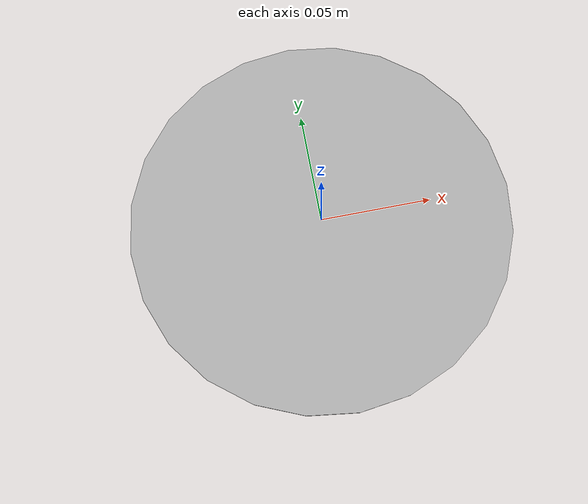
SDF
<?xml version='1.0'?>
<sdf version='1.6'>
		<model name="RangeAndBearing">
			<self_collide>true</self_collide>
			<pose>0.0 0.0 0.0 0.0 0.0 0.0</pose>
			<!-- Start of parts of the pmodel RangeAndBearing -->
			<!-- End of parts of the pmodel RangeAndBearing -->

			<!-- Start of links of the pmodel RangeAndBearing -->
			<!-- link full name is RangeAndBearing::Core -->
			<link name="1-Core">
					<pose>0.0 0.0 0.0 0.0 0.0 0.0</pose>
					<inertial>
						<pose>0.0 0.0 0.0 0.0 0.0 0.0</pose>
						<inertia>
							<ixx>1.0</ixx>
							<ixy>0.0</ixy>
							<ixz>0.0</ixz>
							<iyy>1.0</iyy>
							<iyz>0.0</iyz>
							<izz>1.0</izz>
						</inertia>
						<mass>0.009999999776482582</mass>
					</inertial>
					<!-- body full name is RangeAndBearing::Core::Frame -->
					<collision name="1--Frame">
						<laser_retro>0.0</laser_retro>
						<pose>0.0 0.0 0.0 0.0 0.0 0.0</pose>
						<geometry>
							<cylinder>
								<radius>0.08500000089406967</radius>
								<length>0.004999999888241291</length>
							</cylinder>
						</geometry>
						<surface>
							<bounce>
								<restitution_coefficient>0.0</restitution_coefficient>
								<threshold>100000.0</threshold>
							</bounce>
							<friction>
								<ode>
									<mu>1.0</mu>
									<mu2>1.0</mu2>
									<fdir1>0.0 0.0 0.0</fdir1>
									<slip1>0.0</slip1>
									<slip2>0.0</slip2>
								</ode>
								<torsional>
									<coefficient>1.0</coefficient>
									<surface_radius>0.0</surface_radius>
								</torsional>
							</friction>
						</surface>
					</collision>
					<visual name="1--Frame">
						<laser_retro>0.0</laser_retro>
						<pose>0.0 0.0 0.0 0.0 0.0 0.0</pose>
						<geometry>
							<cylinder>
								<radius>0.08500000089406967</radius>
								<length>0.004999999888241291</length>
							</cylinder>
						</geometry>
						<surface>
							<bounce>
								<restitution_coefficient>0.0</restitution_coefficient>
								<threshold>100000.0</threshold>
							</bounce>
							<friction>
								<ode>
									<mu>1.0</mu>
									<mu2>1.0</mu2>
									<fdir1>0.0 0.0 0.0</fdir1>
									<slip1>0.0</slip1>
									<slip2>0.0</slip2>
								</ode>
								<torsional>
									<coefficient>1.0</coefficient>
									<surface_radius>0.0</surface_radius>
								</torsional>
							</friction>
						</surface>
					</visual>
					<!-- WARNING: The SDF generator relies on annotations of the sensor IRSensor::0 to specify aspects of the
					sensor that are accounted for in the equations. -->
					<!-- sensor simple name is IRSensor -->
					<sensor name="IRSensor::0" type="ray">
						<pose>0.0 0.0 0.0 -0.0 1.57079632679 0.0</pose>
						<visualize>true</visualize>
						<always_on>true</always_on>
						<update_rate>1</update_rate>
						<ray>
							<scan>
								<horizontal>
									<samples>1</samples>
									<resolution>1.0</resolution>
								</horizontal>
								<vertical>
									<samples>1</samples>
									<resolution>1.0</resolution>
								</vertical>
							</scan>
							<range>
								<min>0.0</min>
								<max>0.10000000149011612</max>
							</range>
						</ray>
					</sensor>
					<!-- WARNING: The SDF generator relies on annotations of the sensor IRSensor::1 to specify aspects of the
					sensor that are accounted for in the equations. -->
					<!-- sensor simple name is IRSensor -->
					<sensor name="IRSensor::1" type="ray">
						<pose>0.0 0.0 0.0 -0.7853749990463258 1.57079632679 0.0</pose>
						<visualize>true</visualize>
						<always_on>true</always_on>
						<update_rate>1</update_rate>
						<ray>
							<scan>
								<horizontal>
									<samples>1</samples>
									<resolution>1.0</resolution>
								</horizontal>
								<vertical>
									<samples>1</samples>
									<resolution>1.0</resolution>
								</vertical>
							</scan>
							<range>
								<min>0.0</min>
								<max>0.10000000149011612</max>
							</range>
						</ray>
					</sensor>
					<!-- WARNING: The SDF generator relies on annotations of the sensor IRSensor::2 to specify aspects of the
					sensor that are accounted for in the equations. -->
					<!-- sensor simple name is IRSensor -->
					<sensor name="IRSensor::2" type="ray">
						<pose>0.0 0.0 0.0 -1.5707499980926514 1.57079632679 0.0</pose>
						<visualize>true</visualize>
						<always_on>true</always_on>
						<update_rate>1</update_rate>
						<ray>
							<scan>
								<horizontal>
									<samples>1</samples>
									<resolution>1.0</resolution>
								</horizontal>
								<vertical>
									<samples>1</samples>
									<resolution>1.0</resolution>
								</vertical>
							</scan>
							<range>
								<min>0.0</min>
								<max>0.10000000149011612</max>
							</range>
						</ray>
					</sensor>
					<!-- WARNING: The SDF generator relies on annotations of the sensor IRSensor::3 to specify aspects of the
					sensor that are accounted for in the equations. -->
					<!-- sensor simple name is IRSensor -->
					<sensor name="IRSensor::3" type="ray">
						<pose>0.0 0.0 0.0 -2.356124997138977 1.57079632679 0.0</pose>
						<visualize>true</visualize>
						<always_on>true</always_on>
						<update_rate>1</update_rate>
						<ray>
							<scan>
								<horizontal>
									<samples>1</samples>
									<resolution>1.0</resolution>
								</horizontal>
								<vertical>
									<samples>1</samples>
									<resolution>1.0</resolution>
								</vertical>
							</scan>
							<range>
								<min>0.0</min>
								<max>0.10000000149011612</max>
							</range>
						</ray>
					</sensor>
					<!-- WARNING: The SDF generator relies on annotations of the sensor IRSensor::4 to specify aspects of the
					sensor that are accounted for in the equations. -->
					<!-- sensor simple name is IRSensor -->
					<sensor name="IRSensor::4" type="ray">
						<pose>0.0 0.0 0.0 -3.1414999961853027 1.57079632679 0.0</pose>
						<visualize>true</visualize>
						<always_on>true</always_on>
						<update_rate>1</update_rate>
						<ray>
							<scan>
								<horizontal>
									<samples>1</samples>
									<resolution>1.0</resolution>
								</horizontal>
								<vertical>
									<samples>1</samples>
									<resolution>1.0</resolution>
								</vertical>
							</scan>
							<range>
								<min>0.0</min>
								<max>0.10000000149011612</max>
							</range>
						</ray>
					</sensor>
					<!-- WARNING: The SDF generator relies on annotations of the sensor IRSensor::5 to specify aspects of the
					sensor that are accounted for in the equations. -->
					<!-- sensor simple name is IRSensor -->
					<sensor name="IRSensor::5" type="ray">
						<pose>0.0 0.0 0.0 2.356310311947958 1.57079632679 0.0</pose>
						<visualize>true</visualize>
						<always_on>true</always_on>
						<update_rate>1</update_rate>
						<ray>
							<scan>
								<horizontal>
									<samples>1</samples>
									<resolution>1.0</resolution>
								</horizontal>
								<vertical>
									<samples>1</samples>
									<resolution>1.0</resolution>
								</vertical>
							</scan>
							<range>
								<min>0.0</min>
								<max>0.10000000149011612</max>
							</range>
						</ray>
					</sensor>
					<!-- WARNING: The SDF generator relies on annotations of the sensor IRSensor::6 to specify aspects of the
					sensor that are accounted for in the equations. -->
					<!-- sensor simple name is IRSensor -->
					<sensor name="IRSensor::6" type="ray">
						<pose>0.0 0.0 0.0 1.5709353129016326 1.57079632679 0.0</pose>
						<visualize>true</visualize>
						<always_on>true</always_on>
						<update_rate>1</update_rate>
						<ray>
							<scan>
								<horizontal>
									<samples>1</samples>
									<resolution>1.0</resolution>
								</horizontal>
								<vertical>
									<samples>1</samples>
									<resolution>1.0</resolution>
								</vertical>
							</scan>
							<range>
								<min>0.0</min>
								<max>0.10000000149011612</max>
							</range>
						</ray>
					</sensor>
					<!-- WARNING: The SDF generator relies on annotations of the sensor IRSensor::7 to specify aspects of the
					sensor that are accounted for in the equations. -->
					<!-- sensor simple name is IRSensor -->
					<sensor name="IRSensor::7" type="ray">
						<pose>0.0 0.0 0.0 0.7855603138553067 1.57079632679 0.0</pose>
						<visualize>true</visualize>
						<always_on>true</always_on>
						<update_rate>1</update_rate>
						<ray>
							<scan>
								<horizontal>
									<samples>1</samples>
									<resolution>1.0</resolution>
								</horizontal>
								<vertical>
									<samples>1</samples>
									<resolution>1.0</resolution>
								</vertical>
							</scan>
							<range>
								<min>0.0</min>
								<max>0.10000000149011612</max>
							</range>
						</ray>
					</sensor>
			</link>
			<!-- End of links of the pmodel RangeAndBearing -->

			<!-- Start of joints of the pmodel RangeAndBearing -->
			<!-- End of joints of the pmodel RangeAndBearing -->

			<!-- Start of fixed connections of the pmodel RangeAndBearing -->
			<!-- End of fixed connections of the pmodel RangeAndBearing -->
		</model>
</sdf>
